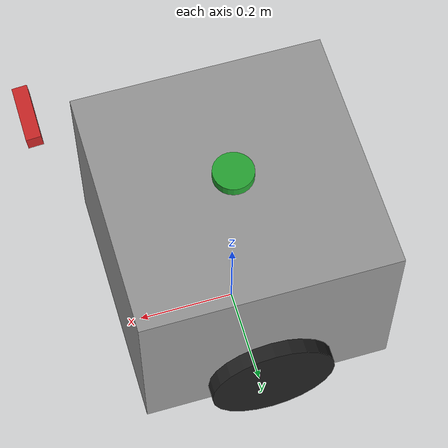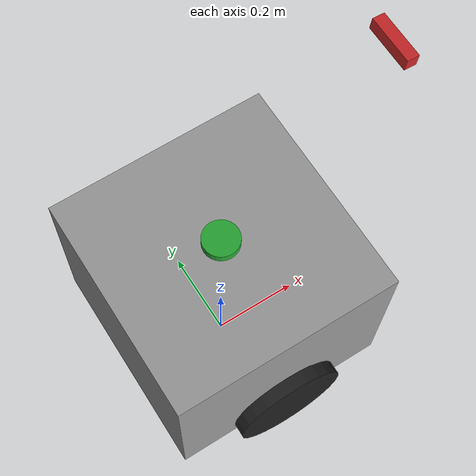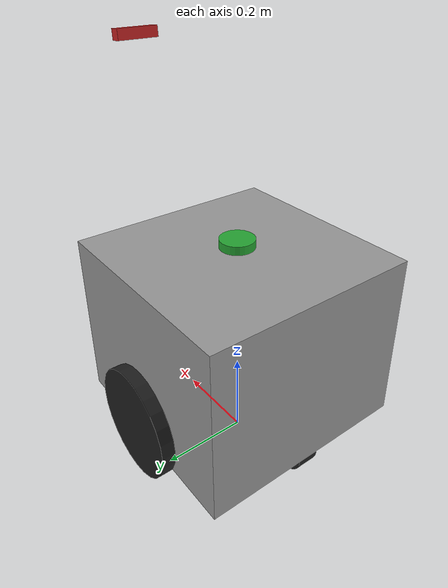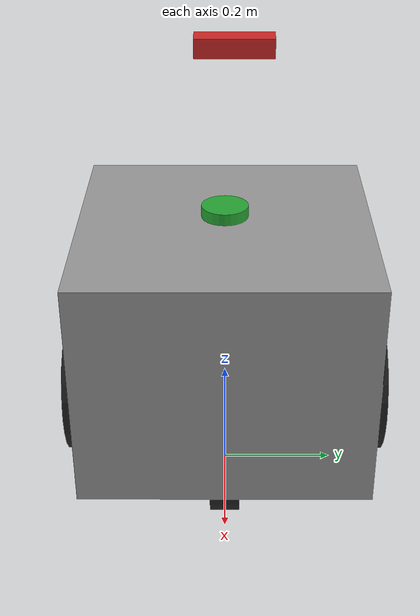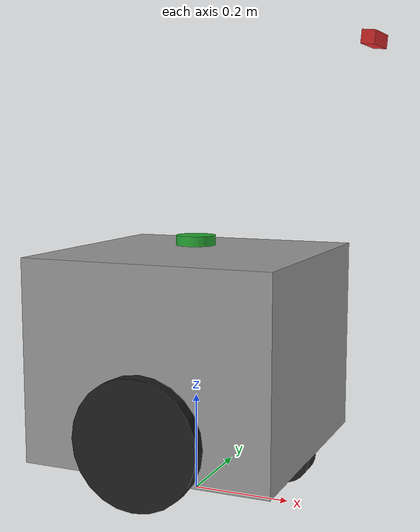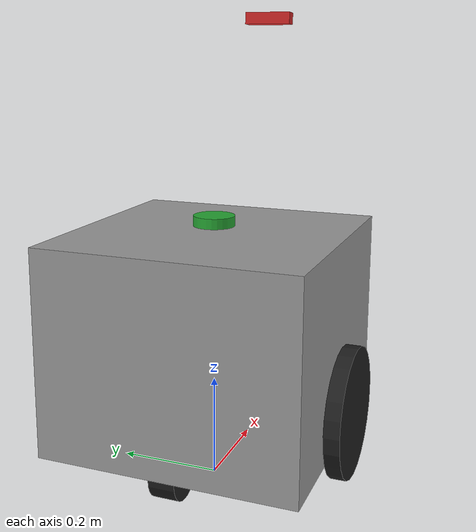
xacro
<?xml version='1.0' ?>
<robot name='shelfino' xmlns:xacro='http://www.ros.org/wiki/xacro'>

  <xacro:property name='PI_2' value='1.5707963267948966' />
  <xacro:arg name="max_camera_depth" default="8.0" />
  <xacro:arg name="robot_name" default="X" />

  <!-- Define the macro for the whole shelfino -->
  <xacro:macro name="shelfino" params='robot_name max_camera_depth'>

      <xacro:include filename='shelfino_test/materials.xacro' />

      <xacro:include filename='shelfino_test/shelfino_body.xacro' />
      <xacro:include filename='shelfino_test/lidar.xacro' />
      <xacro:include filename='shelfino_test/frontal_camera.xacro' />

      <xacro:include filename='shelfino_test/wheels.xacro' />

      <xacro:include filename='shelfino_test/gazebo_classic_controls.xacro' />

  </xacro:macro>

  <!-- Instantiate the model -->
  <xacro:shelfino robot_name="$(arg robot_name)" max_camera_depth="$(arg max_camera_depth)" />
</robot>

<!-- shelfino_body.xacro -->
<robot name='shelfino' xmlns:xacro='http://www.ros.org/wiki/xacro'>

  <link name='${robot_name}/base_link'>
  <!-- This is the main link of reference for the body -->
  </link>

  <link name='${robot_name}/base_footprint'>
  <!-- This is the standard link to which the map is usually associated to -->
  </link>

  <!--
                  SHELFINO'S BODY
  -->
  <xacro:property name='body_width' value='0.5' />
  <xacro:property name='body_length' value='0.5' />
  <xacro:property name='body_height' value='0.4' />
  <xacro:property name='body_offset_x' value='0' />
  <xacro:property name='body_offset_y' value='0' />
  <xacro:property name='body_offset_z' value='0.3' />
  <xacro:property name='caster_radius' value='0.05' />
  <xacro:property name='caster_width' value='0.05' />
  <xacro:property name='caster_offset_z' value='0.1' />
  <xacro:property name='body_weight' value='0.5' />

  <link name='${robot_name}/chassis_link'>
    <visual name='body_visual'>
      <origin xyz='${body_offset_x} ${body_offset_y} ${body_offset_z}' />
      <geometry>
        <box size='${body_width} ${body_length} ${body_height}' />
      </geometry>
      <xacro:if value="${robot_name == 'evader'}">
        <material name='Red' />
      </xacro:if>
      <xacro:if value="${robot_name != 'evader'}">
        <material name='Grey' />
      </xacro:if>
    </visual>

    <visual name='front_caster_visual'>
      <origin xyz='-0.2 0 ${caster_offset_z}' rpy='0 ${PI_2} ${PI_2}' />
      <geometry>
        <cylinder radius='${caster_radius}' length='${caster_width}' />
      </geometry>
      <material name='Black' />
    </visual>

    <visual name='back_caster_visual'>
      <origin xyz='0.2 0 ${caster_offset_z}' rpy='0 ${PI_2} ${PI_2}' />
      <geometry>
        <cylinder radius='${caster_radius}' length='${caster_width}' />
      </geometry>
      <material name='Black' />
    </visual>

    <collision>
      <origin xyz='${body_offset_x} ${body_offset_y} ${body_offset_z}' />
      <geometry>
        <box
                    size='${body_width+caster_radius+0.02} ${body_length+0.02} ${body_height+caster_radius*2.0}'
                />
      </geometry>
    </collision>

    <inertial>
      <mass value='${body_weight}' />
      <inertia
                ixx='0.001'
                ixy='0.0'
                ixz='0.0'
                iyy='0.001'
                iyz='0.0'
                izz='0.001'
            />
    </inertial>
  </link>

  <!--
                  JOINTS
  -->

  <joint name='${robot_name}/base_to_chassis_joint' type='fixed'>
    <parent link='${robot_name}/base_link' />
    <child link='${robot_name}/chassis_link' />
    <origin xyz='0 0 0' rpy='0 0 0' />
  </joint>

  <joint name='${robot_name}/base_to_base_footprint_joint' type='fixed'>
    <parent link='${robot_name}/base_link' />
    <child link='${robot_name}/base_footprint' />
    <origin xyz='0 0 0' rpy='0 0 0' />
  </joint>

  <!--
                  GAZEBO COLORS
  -->

  <gazebo reference="${robot_name}/chassis_link">
    <xacro:if value="${robot_name == 'evader'}">
      <material>Gazebo/Green</material>
    </xacro:if>
    <xacro:if value="${robot_name != 'evader'}">
      <material>Gazebo/Green</material>
    </xacro:if>

    <mu1 value="0.000001" />
    <mu2 value="0.000001" />
  </gazebo>

</robot>

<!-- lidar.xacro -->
<robot name='shelfino' xmlns:xacro='http://www.ros.org/wiki/xacro'>
  <!--
                  LIDAR
  -->
  <xacro:property name='laser_radius' value='0.04' />
  <xacro:property name='laser_height' value='0.02' />
  <xacro:property name='laser_mass' value='0.1' />

  <link name='${robot_name}/base_laser'>
    <visual>
      <origin xyz='0 0 ${laser_height/2}' rpy='0 0 0' />
      <geometry>
        <cylinder radius='${laser_radius}' length='${laser_height}' />
      </geometry>
      <material name='Green' />
    </visual>
    <inertial>
      <mass value='0.1' />
      <inertia
                ixx='0.001'
                ixy='0.0'
                ixz='0.0'
                iyy='0.001'
                iyz='0.0'
                izz='0.001'
            />
    </inertial>
  </link>

  <!--
                  JOINT
  -->

  <joint name='${robot_name}/lidar2d_joint' type='fixed'>
    <parent link='${robot_name}/chassis_link' />
    <child link='${robot_name}/base_laser' />
    <origin xyz='0 0 ${body_height+0.11}' rpy='0 0 0' />
  </joint>

  <gazebo reference='${robot_name}/base_laser'>
    <material>Gazebo/Green</material>
    <sensor name="laser" type="ray">
      <pose> 0 0 0 0 0 0 </pose>
      <visualize>false</visualize>
      <update_rate>4</update_rate>
      <ray>
        <scan>
          <horizontal>
            <samples>360</samples>
            <min_angle>-3.14</min_angle>
            <max_angle>3.14</max_angle>
          </horizontal>
        </scan>
        <range>
          <min>${body_width/sqrt(2)+body_width*0.1}</min>
          <max>15</max>
        </range>
        <noise>
          <type>gaussian</type>
          <mean>0.0</mean>
          <stddev>0.02</stddev>
        </noise>
      </ray>
      <plugin name="laser_controller" filename="libgazebo_ros_ray_sensor.so">
        <ros>
          <remapping>~/out:=scan</remapping>
        </ros>
        <output_type>sensor_msgs/LaserScan</output_type>
        <frame_name>${robot_name}/base_laser</frame_name>
      </plugin>
    </sensor>
  </gazebo>

</robot>

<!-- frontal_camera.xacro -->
<robot name='shelfino' xmlns:xacro='http://www.ros.org/wiki/xacro'>
  <!--
  CAMERA
  -->
  <xacro:property name='f_camera_width' value='0.1' />
  <xacro:property name='f_camera_height' value='0.025' />
  <xacro:property name='f_camera_depth' value='0.025' />
  <xacro:property name='f_camera_mass' value='0.1' />

  <link name='${robot_name}/frontal_camera_link'>
    <visual>
      <origin xyz='0 ${f_camera_depth/2} 0' rpy='0 0 0' />
      <geometry>
        <box size='${f_camera_depth} ${f_camera_width} ${f_camera_height}' />
      </geometry>
      <material name='Red' />
    </visual>
    <inertial>
      <mass value='0.1' />
      <inertia
                ixx='0.001'
                ixy='0.0'
                ixz='0.0'
                iyy='0.001'
                iyz='0.0'
                izz='0.001'
            />
    </inertial>
  </link>

  <link name='${robot_name}/frontal_camera_link_optical'>
  </link>

  <!--
                  JOINT
  -->

  <joint name='${robot_name}/frontal_camera_joint' type='fixed'>
    <parent link='${robot_name}/chassis_link' />
    <child link='${robot_name}/frontal_camera_link' />
    <origin xyz='${body_length/2+0.10} 0 ${body_height/2+0.7}' rpy='0 0.087 0' />
  </joint>

  <!-- From Ros Joint system to video coordinate system -->

  <joint name='${robot_name}/frontal_camera_optical_joint' type='fixed'>
    <parent link='${robot_name}/frontal_camera_link' />
    <child link='${robot_name}/frontal_camera_link_optical' />
    <origin xyz='0 0 0' rpy='${-pi/2} 0 ${-pi/2}' />
  </joint>
d
  <gazebo reference='${robot_name}/frontal_camera_link'>
    <material>Gazebo/Red</material>
    <sensor name="f_camera" type="depth">
      <pose> 0 0 0 0 0 0 </pose>
      <visualize>true</visualize>
      <update_rate>10</update_rate>
      <camera>
        <horizontal_fov>1.089</horizontal_fov>
        <image>
            <format>B8G8R8</format>
            <width>640</width>
            <heigth>480</heigth>
        </image>
        <clip>
            <near>0.05</near>
            <far>${max_camera_depth}</far>
        </clip>
        <noise>
            <type>gaussian</type>
            <mean>0.0</mean>
            <stddev>0.1</stddev>  <!-- Adjust for stronger/weaker noise -->
        </noise>
      </camera>

      <plugin name="f_camera_controller" filename="libgazebo_ros_camera.so">

        <frame_name>${robot_name}/frontal_camera_link_optical</frame_name>
        <min_depth>0.1</min_depth>
        <max_depth>100.0</max_depth>

      </plugin>
    </sensor>
  </gazebo>

</robot>

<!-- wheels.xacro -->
<robot name='shelfino' xmlns:xacro='http://www.ros.org/wiki/xacro'>
  <xacro:property name='wheel_radius' value='0.125' />
  <xacro:property name='wheel_width' value='0.03' />

  <xacro:macro name="wheel" params="prefix reflect">

    <!--
                    LINKS
    -->

    <link name="${robot_name}/${prefix}_wheel">
      <visual>
        <geometry>
          <cylinder radius="${wheel_radius}" length="${wheel_width}" />
        </geometry>
        <material name="Black" />
      </visual>
      <collision>
        <geometry>
          <cylinder radius="${wheel_radius}" length="${wheel_width+0.005}" />
        </geometry>
      </collision>
      <inertial>
        <mass value="0.028498940" />
        <inertia
                    ixx='1.1175580e-05'
                    ixy='-4.2369783e-11'
                    ixz='-5.9381719e-09'
                    iyy='1.1192413e-05'
                    iyz='-1.4400107e-11'
                    izz='2.0712558e-05'
                />
      </inertial>
    </link>

    <!--
                    JOINTS
    -->

    <joint name="${robot_name}/${prefix}_wheel_joint" type="continuous">
      <parent link="${robot_name}/chassis_link" />
      <child link="${robot_name}/${prefix}_wheel" />
      <origin
                xyz="0 ${reflect*(body_width/2+0.02)} ${wheel_radius+0.05}"
                rpy="0 ${pi/2} ${pi/2}"
            />
      <axis
                xyz="0 0 1"
            /> <!-- specifies the axis around which it should revolve -->
    </joint>

    <!--
                    GAZEBO COLORS
    -->
    <gazebo reference="${robot_name}/${prefix}_wheel">
      <material>Gazebo/Black</material>
      <plugin
                name='gazebo_ros_joint_state_publisher'
                filename='libgazebo_ros_joint_state_publisher.so'
            >
        <update_rate>100</update_rate>
        <ros>
            <remapping>~/out:=joint_states</remapping>
        </ros>
        <joint_name>${prefix}_wheel_joint</joint_name>
      </plugin>
    </gazebo>

  </xacro:macro>

  <!--
                    WHEELS
  -->
  <xacro:wheel prefix="right" reflect="-1" />
  <xacro:wheel prefix="left" reflect="1" />

</robot>
